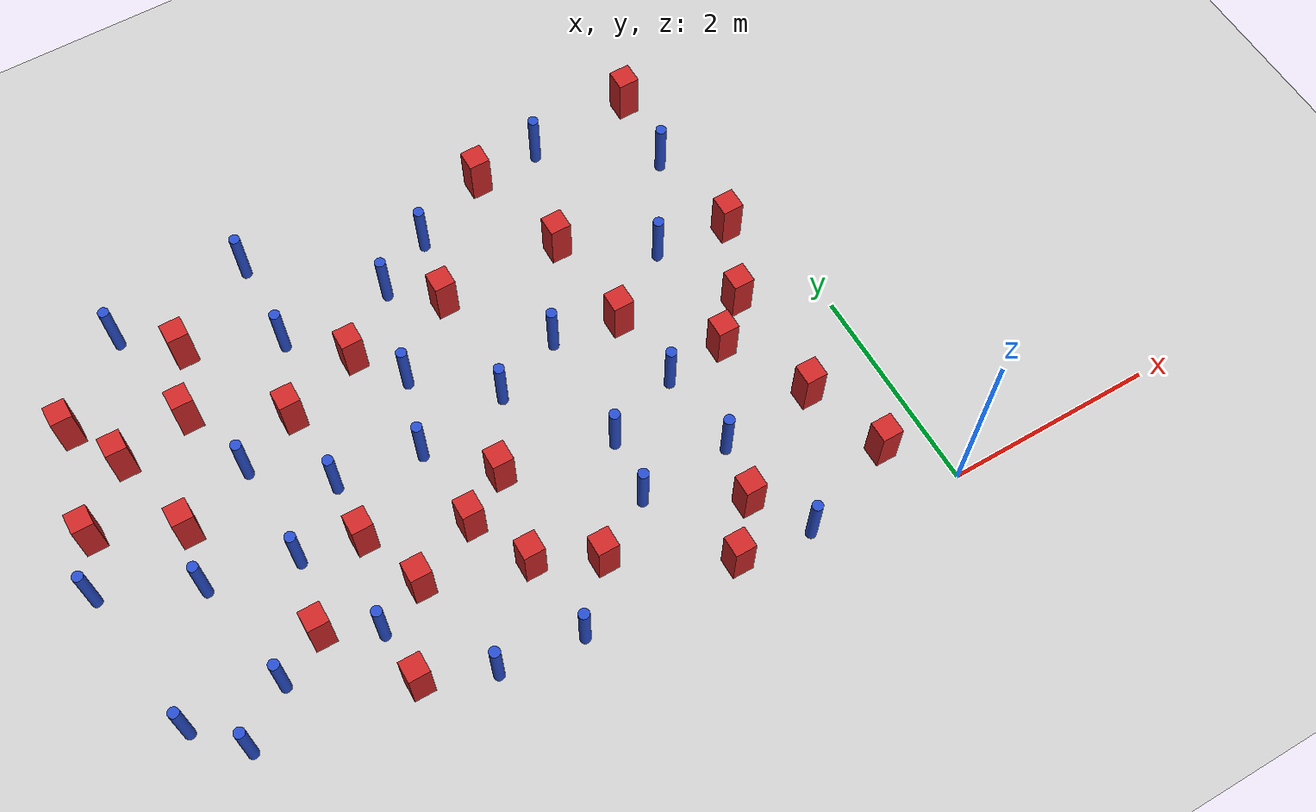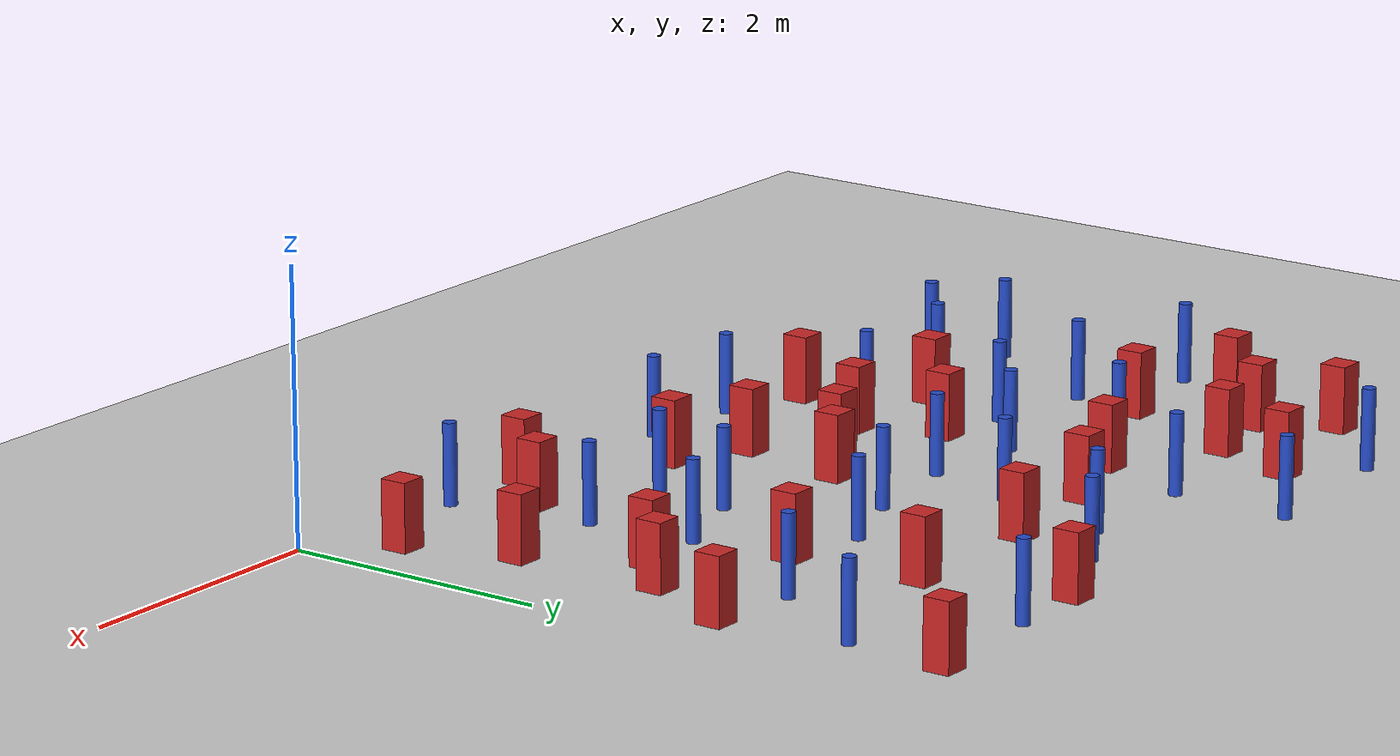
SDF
<sdf version="1.6">
 <world name="default">
  <model name="ground_plane">
   <static>1</static>
   <link name="link">
    <collision name="collision">
     <geometry><plane><normal>0 0 1</normal><size>100 100</size></plane></geometry>
     <surface><friction><ode><mu>100</mu><mu2>50</mu2></ode></friction></surface>
    </collision>
    <visual name="visual">
     <cast_shadows>0</cast_shadows>
     <geometry><plane><normal>0 0 1</normal><size>100 100</size></plane></geometry>
     <material>
      <ambient>1.0 1.0 1.0 1.0</ambient>
      <diffuse>0.8 0.8 0.8 1.0</diffuse>
      <specular>0.01 0.01 0.01 1.000000</specular>
     </material>
    </visual>
   </link>
  </model>
  <model name="square_post_obstacle0">
   <static>true</static>
   <pose>-6.26751508779 3.72826211818 1.91545236811e-07 -7.35059704564e-06 1.12565212e-07 2.39332434364e-05</pose>
   <link name="link">
    <pose>0 0 0.25 0 -0 0</pose>
    <inertial>
     <mass>100</mass>
     <inertia>
      <ixx>0.166667</ixx>
      <ixy>0</ixy>
      <ixz>0</ixz>
      <iyy>0.166667</iyy>
      <iyz>0</iyz>
      <izz>0.166667</izz>
     </inertia>
    </inertial>
    <collision name="collision"><geometry><box><size>.2 .2 .5</size></box></geometry></collision>
    <visual name="visual">
     <geometry><box><size>.2 .2 .5</size></box></geometry>
     <material>
      <script><name>Gazebo/Red</name><uri>file://media/materials/scripts/gazebo.material</uri></script>
     </material>
    </visual>
   </link>
  </model>
  <model name="square_post_obstacle11">
   <static>true</static>
   <pose>-3.46584824441 1.98512690318 1.91545236811e-07 -7.35059704564e-06 1.12565212e-07 2.39332434364e-05</pose>
   <link name="link">
    <pose>0 0 0.25 0 -0 0</pose>
    <inertial>
     <mass>100</mass>
     <inertia>
      <ixx>0.166667</ixx>
      <ixy>0</ixy>
      <ixz>0</ixz>
      <iyy>0.166667</iyy>
      <iyz>0</iyz>
      <izz>0.166667</izz>
     </inertia>
    </inertial>
    <collision name="collision"><geometry><box><size>.2 .2 .5</size></box></geometry></collision>
    <visual name="visual">
     <geometry><box><size>.2 .2 .5</size></box></geometry>
     <material>
      <script><name>Gazebo/Red</name><uri>file://media/materials/scripts/gazebo.material</uri></script>
     </material>
    </visual>
   </link>
  </model>
  <model name="square_post_obstacle13">
   <static>true</static>
   <pose>-4.93012539754 0.668586995232 1.91545236811e-07 -7.35059704564e-06 1.12565212e-07 2.39332434364e-05</pose>
   <link name="link">
    <pose>0 0 0.25 0 -0 0</pose>
    <inertial>
     <mass>100</mass>
     <inertia>
      <ixx>0.166667</ixx>
      <ixy>0</ixy>
      <ixz>0</ixz>
      <iyy>0.166667</iyy>
      <iyz>0</iyz>
      <izz>0.166667</izz>
     </inertia>
    </inertial>
    <collision name="collision"><geometry><box><size>.2 .2 .5</size></box></geometry></collision>
    <visual name="visual">
     <geometry><box><size>.2 .2 .5</size></box></geometry>
     <material>
      <script><name>Gazebo/Red</name><uri>file://media/materials/scripts/gazebo.material</uri></script>
     </material>
    </visual>
   </link>
  </model>
  <model name="pole_obstacle10">
   <static>true</static>
   <pose>-5.36167186587 3.1312678507 7.38925637345e-09 -8.47170692798e-08 1.24976764937e-08 -1.74513093023e-07</pose>
   <link name="link">
    <pose>0 0 0.3 0 -0 0</pose>
    <inertial>
     <mass>1</mass>
     <inertia><ixx>0.145833</ixx><ixy>0</ixy><ixz>0</ixz><iyy>0.145833</iyy><iyz>0</iyz><izz>0.125</izz></inertia>
    </inertial>
    <collision name="collision">
     <geometry><cylinder><radius>0.05</radius><length>.6</length></cylinder></geometry>
    </collision>
    <visual name="visual">
     <geometry><cylinder><radius>0.05</radius><length>.6</length></cylinder></geometry>
     <material>
      <script><name>Gazebo/Blue</name><uri>file://media/materials/scripts/gazebo.material</uri></script>
     </material>
    </visual>
   </link>
  </model>
  <model name="pole_obstacle13">
   <static>true</static>
   <pose>-0.584820534755 4.12830127704 7.38925637345e-09 -8.471706928e-08 1.24976765086e-08 -1.74513093015e-07</pose>
   <link name="link">
    <pose>0 0 0.3 0 -0 0</pose>
    <inertial>
     <mass>1</mass>
     <inertia><ixx>0.145833</ixx><ixy>0</ixy><ixz>0</ixz><iyy>0.145833</iyy><iyz>0</iyz><izz>0.125</izz></inertia>
    </inertial>
    <collision name="collision">
     <geometry><cylinder><radius>0.05</radius><length>.6</length></cylinder></geometry>
    </collision>
    <visual name="visual">
     <geometry><cylinder><radius>0.05</radius><length>.6</length></cylinder></geometry>
     <material>
      <script><name>Gazebo/Blue</name><uri>file://media/materials/scripts/gazebo.material</uri></script>
     </material>
    </visual>
   </link>
  </model>
  <model name="square_post_obstacle25">
   <static>true</static>
   <pose>-1.90355383326 3.78758159417 1.91545236811e-07 -7.35059704564e-06 1.12565212e-07 2.39332434364e-05</pose>
   <link name="link">
    <pose>0 0 0.25 0 -0 0</pose>
    <inertial>
     <mass>100</mass>
     <inertia>
      <ixx>0.166667</ixx>
      <ixy>0</ixy>
      <ixz>0</ixz>
      <iyy>0.166667</iyy>
      <iyz>0</iyz>
      <izz>0.166667</izz>
     </inertia>
    </inertial>
    <collision name="collision"><geometry><box><size>.2 .2 .5</size></box></geometry></collision>
    <visual name="visual">
     <geometry><box><size>.2 .2 .5</size></box></geometry>
     <material>
      <script><name>Gazebo/Red</name><uri>file://media/materials/scripts/gazebo.material</uri></script>
     </material>
    </visual>
   </link>
  </model>
  <model name="square_post_obstacle26">
   <static>true</static>
   <pose>-1.80765000594 2.80278748641 1.91545236811e-07 -7.35059704564e-06 1.12565212e-07 2.39332434364e-05</pose>
   <link name="link">
    <pose>0 0 0.25 0 -0 0</pose>
    <inertial>
     <mass>100</mass>
     <inertia>
      <ixx>0.166667</ixx>
      <ixy>0</ixy>
      <ixz>0</ixz>
      <iyy>0.166667</iyy>
      <iyz>0</iyz>
      <izz>0.166667</izz>
     </inertia>
    </inertial>
    <collision name="collision"><geometry><box><size>.2 .2 .5</size></box></geometry></collision>
    <visual name="visual">
     <geometry><box><size>.2 .2 .5</size></box></geometry>
     <material>
      <script><name>Gazebo/Red</name><uri>file://media/materials/scripts/gazebo.material</uri></script>
     </material>
    </visual>
   </link>
  </model>
  <model name="square_post_obstacle27">
   <static>true</static>
   <pose>-5.6024415163 3.86342693756 1.91545236811e-07 -7.35059704564e-06 1.12565212e-07 2.39332434364e-05</pose>
   <link name="link">
    <pose>0 0 0.25 0 -0 0</pose>
    <inertial>
     <mass>100</mass>
     <inertia>
      <ixx>0.166667</ixx>
      <ixy>0</ixy>
      <ixz>0</ixz>
      <iyy>0.166667</iyy>
      <iyz>0</iyz>
      <izz>0.166667</izz>
     </inertia>
    </inertial>
    <collision name="collision"><geometry><box><size>.2 .2 .5</size></box></geometry></collision>
    <visual name="visual">
     <geometry><box><size>.2 .2 .5</size></box></geometry>
     <material>
      <script><name>Gazebo/Red</name><uri>file://media/materials/scripts/gazebo.material</uri></script>
     </material>
    </visual>
   </link>
  </model>
  <model name="pole_obstacle22">
   <static>true</static>
   <pose>-4.53107333322 5.02013985977 7.38925637345e-09 -8.47170692796e-08 1.24976764786e-08 -1.74513093032e-07</pose>
   <link name="link">
    <pose>0 0 0.3 0 -0 0</pose>
    <inertial>
     <mass>1</mass>
     <inertia><ixx>0.145833</ixx><ixy>0</ixy><ixz>0</ixz><iyy>0.145833</iyy><iyz>0</iyz><izz>0.125</izz></inertia>
    </inertial>
    <collision name="collision">
     <geometry><cylinder><radius>0.05</radius><length>.6</length></cylinder></geometry>
    </collision>
    <visual name="visual">
     <geometry><cylinder><radius>0.05</radius><length>.6</length></cylinder></geometry>
     <material>
      <script><name>Gazebo/Blue</name><uri>file://media/materials/scripts/gazebo.material</uri></script>
     </material>
    </visual>
   </link>
  </model>
  <model name="pole_obstacle31">
   <static>true</static>
   <pose>-2.44170621021 1.77530506528 7.38925637345e-09 -8.471706928e-08 1.24976765152e-08 -1.74513093012e-07</pose>
   <link name="link">
    <pose>0 0 0.3 0 -0 0</pose>
    <inertial>
     <mass>1</mass>
     <inertia><ixx>0.145833</ixx><ixy>0</ixy><ixz>0</ixz><iyy>0.145833</iyy><iyz>0</iyz><izz>0.125</izz></inertia>
    </inertial>
    <collision name="collision">
     <geometry><cylinder><radius>0.05</radius><length>.6</length></cylinder></geometry>
    </collision>
    <visual name="visual">
     <geometry><cylinder><radius>0.05</radius><length>.6</length></cylinder></geometry>
     <material>
      <script><name>Gazebo/Blue</name><uri>file://media/materials/scripts/gazebo.material</uri></script>
     </material>
    </visual>
   </link>
  </model>
  <model name="pole_obstacle40">
   <static>true</static>
   <pose>-1.71395417419 2.05187552667 7.38925637345e-09 -8.47170692799e-08 1.24976765053e-08 -1.74513093017e-07</pose>
   <link name="link">
    <pose>0 0 0.3 0 -0 0</pose>
    <inertial>
     <mass>1</mass>
     <inertia><ixx>0.145833</ixx><ixy>0</ixy><ixz>0</ixz><iyy>0.145833</iyy><iyz>0</iyz><izz>0.125</izz></inertia>
    </inertial>
    <collision name="collision">
     <geometry><cylinder><radius>0.05</radius><length>.6</length></cylinder></geometry>
    </collision>
    <visual name="visual">
     <geometry><cylinder><radius>0.05</radius><length>.6</length></cylinder></geometry>
     <material>
      <script><name>Gazebo/Blue</name><uri>file://media/materials/scripts/gazebo.material</uri></script>
     </material>
    </visual>
   </link>
  </model>
  <model name="square_post_obstacle41">
   <static>true</static>
   <pose>-4.07237400024 3.67004723282 1.91545236811e-07 -7.35059704564e-06 1.12565212e-07 2.39332434364e-05</pose>
   <link name="link">
    <pose>0 0 0.25 0 -0 0</pose>
    <inertial>
     <mass>100</mass>
     <inertia>
      <ixx>0.166667</ixx>
      <ixy>0</ixy>
      <ixz>0</ixz>
      <iyy>0.166667</iyy>
      <iyz>0</iyz>
      <izz>0.166667</izz>
     </inertia>
    </inertial>
    <collision name="collision"><geometry><box><size>.2 .2 .5</size></box></geometry></collision>
    <visual name="visual">
     <geometry><box><size>.2 .2 .5</size></box></geometry>
     <material>
      <script><name>Gazebo/Red</name><uri>file://media/materials/scripts/gazebo.material</uri></script>
     </material>
    </visual>
   </link>
  </model>
  <model name="square_post_obstacle45">
   <static>true</static>
   <pose>-3.09388307639 3.78134132226 1.91545236811e-07 -7.35059704564e-06 1.12565212e-07 2.39332434364e-05</pose>
   <link name="link">
    <pose>0 0 0.25 0 -0 0</pose>
    <inertial>
     <mass>100</mass>
     <inertia>
      <ixx>0.166667</ixx>
      <ixy>0</ixy>
      <ixz>0</ixz>
      <iyy>0.166667</iyy>
      <iyz>0</iyz>
      <izz>0.166667</izz>
     </inertia>
    </inertial>
    <collision name="collision"><geometry><box><size>.2 .2 .5</size></box></geometry></collision>
    <visual name="visual">
     <geometry><box><size>.2 .2 .5</size></box></geometry>
     <material>
      <script><name>Gazebo/Red</name><uri>file://media/materials/scripts/gazebo.material</uri></script>
     </material>
    </visual>
   </link>
  </model>
  <model name="pole_obstacle50">
   <static>true</static>
   <pose>-5.31853069491 2.13925772895 7.38925637345e-09 -8.47170692798e-08 1.24976764937e-08 -1.74513093023e-07</pose>
   <link name="link">
    <pose>0 0 0.3 0 -0 0</pose>
    <inertial>
     <mass>1</mass>
     <inertia><ixx>0.145833</ixx><ixy>0</ixy><ixz>0</ixz><iyy>0.145833</iyy><iyz>0</iyz><izz>0.125</izz></inertia>
    </inertial>
    <collision name="collision">
     <geometry><cylinder><radius>0.05</radius><length>.6</length></cylinder></geometry>
    </collision>
    <visual name="visual">
     <geometry><cylinder><radius>0.05</radius><length>.6</length></cylinder></geometry>
     <material>
      <script><name>Gazebo/Blue</name><uri>file://media/materials/scripts/gazebo.material</uri></script>
     </material>
    </visual>
   </link>
  </model>
  <model name="square_post_obstacle56">
   <static>true</static>
   <pose>-6.56269119229 4.24138942581 1.91545236811e-07 -7.35059704564e-06 1.12565212e-07 2.39332434364e-05</pose>
   <link name="link">
    <pose>0 0 0.25 0 -0 0</pose>
    <inertial>
     <mass>100</mass>
     <inertia>
      <ixx>0.166667</ixx>
      <ixy>0</ixy>
      <ixz>0</ixz>
      <iyy>0.166667</iyy>
      <iyz>0</iyz>
      <izz>0.166667</izz>
     </inertia>
    </inertial>
    <collision name="collision"><geometry><box><size>.2 .2 .5</size></box></geometry></collision>
    <visual name="visual">
     <geometry><box><size>.2 .2 .5</size></box></geometry>
     <material>
      <script><name>Gazebo/Red</name><uri>file://media/materials/scripts/gazebo.material</uri></script>
     </material>
    </visual>
   </link>
  </model>
  <model name="square_post_obstacle61">
   <static>true</static>
   <pose>-0.718454725162 1.32841768803 1.91545236811e-07 -7.35059704564e-06 1.12565212e-07 2.39332434364e-05</pose>
   <link name="link">
    <pose>0 0 0.25 0 -0 0</pose>
    <inertial>
     <mass>100</mass>
     <inertia>
      <ixx>0.166667</ixx>
      <ixy>0</ixy>
      <ixz>0</ixz>
      <iyy>0.166667</iyy>
      <iyz>0</iyz>
      <izz>0.166667</izz>
     </inertia>
    </inertial>
    <collision name="collision"><geometry><box><size>.2 .2 .5</size></box></geometry></collision>
    <visual name="visual">
     <geometry><box><size>.2 .2 .5</size></box></geometry>
     <material>
      <script><name>Gazebo/Red</name><uri>file://media/materials/scripts/gazebo.material</uri></script>
     </material>
    </visual>
   </link>
  </model>
  <model name="square_post_obstacle68">
   <static>true</static>
   <pose>-0.760852131063 2.45943947834 1.91545236811e-07 -7.35059704564e-06 1.12565212e-07 2.39332434364e-05</pose>
   <link name="link">
    <pose>0 0 0.25 0 -0 0</pose>
    <inertial>
     <mass>100</mass>
     <inertia>
      <ixx>0.166667</ixx>
      <ixy>0</ixy>
      <ixz>0</ixz>
      <iyy>0.166667</iyy>
      <iyz>0</iyz>
      <izz>0.166667</izz>
     </inertia>
    </inertial>
    <collision name="collision"><geometry><box><size>.2 .2 .5</size></box></geometry></collision>
    <visual name="visual">
     <geometry><box><size>.2 .2 .5</size></box></geometry>
     <material>
      <script><name>Gazebo/Red</name><uri>file://media/materials/scripts/gazebo.material</uri></script>
     </material>
    </visual>
   </link>
  </model>
  <model name="pole_obstacle76">
   <static>true</static>
   <pose>-6.73254689458 1.24661607163 7.38925637345e-09 -8.471706928e-08 1.24976765134e-08 -1.74513093015e-07</pose>
   <link name="link">
    <pose>0 0 0.3 0 -0 0</pose>
    <inertial>
     <mass>1</mass>
     <inertia><ixx>0.145833</ixx><ixy>0</ixy><ixz>0</ixz><iyy>0.145833</iyy><iyz>0</iyz><izz>0.125</izz></inertia>
    </inertial>
    <collision name="collision">
     <geometry><cylinder><radius>0.05</radius><length>.6</length></cylinder></geometry>
    </collision>
    <visual name="visual">
     <geometry><cylinder><radius>0.05</radius><length>.6</length></cylinder></geometry>
     <material>
      <script><name>Gazebo/Blue</name><uri>file://media/materials/scripts/gazebo.material</uri></script>
     </material>
    </visual>
   </link>
  </model>
  <model name="pole_obstacle80">
   <static>true</static>
   <pose>-1.12456285723 3.26364188311 7.38925637345e-09 -8.47170692799e-08 1.24976765053e-08 -1.74513093017e-07</pose>
   <link name="link">
    <pose>0 0 0.3 0 -0 0</pose>
    <inertial>
     <mass>1</mass>
     <inertia><ixx>0.145833</ixx><ixy>0</ixy><ixz>0</ixz><iyy>0.145833</iyy><iyz>0</iyz><izz>0.125</izz></inertia>
    </inertial>
    <collision name="collision">
     <geometry><cylinder><radius>0.05</radius><length>.6</length></cylinder></geometry>
    </collision>
    <visual name="visual">
     <geometry><cylinder><radius>0.05</radius><length>.6</length></cylinder></geometry>
     <material>
      <script><name>Gazebo/Blue</name><uri>file://media/materials/scripts/gazebo.material</uri></script>
     </material>
    </visual>
   </link>
  </model>
  <model name="pole_obstacle90">
   <static>true</static>
   <pose>-1.40539435352 0.194600641974 7.38925637345e-09 -8.47170692799e-08 1.24976765003e-08 -1.7451309302e-07</pose>
   <link name="link">
    <pose>0 0 0.3 0 -0 0</pose>
    <inertial>
     <mass>1</mass>
     <inertia><ixx>0.145833</ixx><ixy>0</ixy><ixz>0</ixz><iyy>0.145833</iyy><iyz>0</iyz><izz>0.125</izz></inertia>
    </inertial>
    <collision name="collision">
     <geometry><cylinder><radius>0.05</radius><length>.6</length></cylinder></geometry>
    </collision>
    <visual name="visual">
     <geometry><cylinder><radius>0.05</radius><length>.6</length></cylinder></geometry>
     <material>
      <script><name>Gazebo/Blue</name><uri>file://media/materials/scripts/gazebo.material</uri></script>
     </material>
    </visual>
   </link>
  </model>
  <model name="square_post_obstacle86">
   <static>true</static>
   <pose>-4.76609665487 2.03961601395 1.91545236811e-07 -7.35059704564e-06 1.12565212e-07 2.39332434364e-05</pose>
   <link name="link">
    <pose>0 0 0.25 0 -0 0</pose>
    <inertial>
     <mass>100</mass>
     <inertia>
      <ixx>0.166667</ixx>
      <ixy>0</ixy>
      <ixz>0</ixz>
      <iyy>0.166667</iyy>
      <iyz>0</iyz>
      <izz>0.166667</izz>
     </inertia>
    </inertial>
    <collision name="collision"><geometry><box><size>.2 .2 .5</size></box></geometry></collision>
    <visual name="visual">
     <geometry><box><size>.2 .2 .5</size></box></geometry>
     <material>
      <script><name>Gazebo/Red</name><uri>file://media/materials/scripts/gazebo.material</uri></script>
     </material>
    </visual>
   </link>
  </model>
  <model name="pole_obstacle99">
   <static>true</static>
   <pose>-3.55109913614 0.34456630186 7.38925637345e-09 -8.471706928e-08 1.24976765172e-08 -1.74513093013e-07</pose>
   <link name="link">
    <pose>0 0 0.3 0 -0 0</pose>
    <inertial>
     <mass>1</mass>
     <inertia><ixx>0.145833</ixx><ixy>0</ixy><ixz>0</ixz><iyy>0.145833</iyy><iyz>0</iyz><izz>0.125</izz></inertia>
    </inertial>
    <collision name="collision">
     <geometry><cylinder><radius>0.05</radius><length>.6</length></cylinder></geometry>
    </collision>
    <visual name="visual">
     <geometry><cylinder><radius>0.05</radius><length>.6</length></cylinder></geometry>
     <material>
      <script><name>Gazebo/Blue</name><uri>file://media/materials/scripts/gazebo.material</uri></script>
     </material>
    </visual>
   </link>
  </model>
  <model name="pole_obstacle102">
   <static>true</static>
   <pose>-6.35195689966 0.841429002527 7.38925637345e-09 -8.47170692799e-08 1.24976765038e-08 -1.74513093018e-07</pose>
   <link name="link">
    <pose>0 0 0.3 0 -0 0</pose>
    <inertial>
     <mass>1</mass>
     <inertia><ixx>0.145833</ixx><ixy>0</ixy><ixz>0</ixz><iyy>0.145833</iyy><iyz>0</iyz><izz>0.125</izz></inertia>
    </inertial>
    <collision name="collision">
     <geometry><cylinder><radius>0.05</radius><length>.6</length></cylinder></geometry>
    </collision>
    <visual name="visual">
     <geometry><cylinder><radius>0.05</radius><length>.6</length></cylinder></geometry>
     <material>
      <script><name>Gazebo/Blue</name><uri>file://media/materials/scripts/gazebo.material</uri></script>
     </material>
    </visual>
   </link>
  </model>
  <model name="pole_obstacle106">
   <static>true</static>
   <pose>-2.50994527466 1.17356923849 7.38925637345e-09 -8.471706928e-08 1.24976765152e-08 -1.74513093012e-07</pose>
   <link name="link">
    <pose>0 0 0.3 0 -0 0</pose>
    <inertial>
     <mass>1</mass>
     <inertia><ixx>0.145833</ixx><ixy>0</ixy><ixz>0</ixz><iyy>0.145833</iyy><iyz>0</iyz><izz>0.125</izz></inertia>
    </inertial>
    <collision name="collision">
     <geometry><cylinder><radius>0.05</radius><length>.6</length></cylinder></geometry>
    </collision>
    <visual name="visual">
     <geometry><cylinder><radius>0.05</radius><length>.6</length></cylinder></geometry>
     <material>
      <script><name>Gazebo/Blue</name><uri>file://media/materials/scripts/gazebo.material</uri></script>
     </material>
    </visual>
   </link>
  </model>
  <model name="pole_obstacle117">
   <static>true</static>
   <pose>-1.62160480567 1.23973842471 7.38925637345e-09 -8.471706928e-08 1.24976765079e-08 -1.74513093017e-07</pose>
   <link name="link">
    <pose>0 0 0.3 0 -0 0</pose>
    <inertial>
     <mass>1</mass>
     <inertia><ixx>0.145833</ixx><ixy>0</ixy><ixz>0</ixz><iyy>0.145833</iyy><iyz>0</iyz><izz>0.125</izz></inertia>
    </inertial>
    <collision name="collision">
     <geometry><cylinder><radius>0.05</radius><length>.6</length></cylinder></geometry>
    </collision>
    <visual name="visual">
     <geometry><cylinder><radius>0.05</radius><length>.6</length></cylinder></geometry>
     <material>
      <script><name>Gazebo/Blue</name><uri>file://media/materials/scripts/gazebo.material</uri></script>
     </material>
    </visual>
   </link>
  </model>
  <model name="square_post_obstacle104">
   <static>true</static>
   <pose>-4.53236744779 1.42019899009 1.91545236811e-07 -7.35059704564e-06 1.12565212e-07 2.39332434364e-05</pose>
   <link name="link">
    <pose>0 0 0.25 0 -0 0</pose>
    <inertial>
     <mass>100</mass>
     <inertia>
      <ixx>0.166667</ixx>
      <ixy>0</ixy>
      <ixz>0</ixz>
      <iyy>0.166667</iyy>
      <iyz>0</iyz>
      <izz>0.166667</izz>
     </inertia>
    </inertial>
    <collision name="collision"><geometry><box><size>.2 .2 .5</size></box></geometry></collision>
    <visual name="visual">
     <geometry><box><size>.2 .2 .5</size></box></geometry>
     <material>
      <script><name>Gazebo/Red</name><uri>file://media/materials/scripts/gazebo.material</uri></script>
     </material>
    </visual>
   </link>
  </model>
  <model name="pole_obstacle122">
   <static>true</static>
   <pose>-1.57235584041 4.81847363338 7.38925637345e-09 -8.47170692799e-08 1.24976765033e-08 -1.74513093018e-07</pose>
   <link name="link">
    <pose>0 0 0.3 0 -0 0</pose>
    <inertial>
     <mass>1</mass>
     <inertia><ixx>0.145833</ixx><ixy>0</ixy><ixz>0</ixz><iyy>0.145833</iyy><iyz>0</iyz><izz>0.125</izz></inertia>
    </inertial>
    <collision name="collision">
     <geometry><cylinder><radius>0.05</radius><length>.6</length></cylinder></geometry>
    </collision>
    <visual name="visual">
     <geometry><cylinder><radius>0.05</radius><length>.6</length></cylinder></geometry>
     <material>
      <script><name>Gazebo/Blue</name><uri>file://media/materials/scripts/gazebo.material</uri></script>
     </material>
    </visual>
   </link>
  </model>
  <model name="pole_obstacle133">
   <static>true</static>
   <pose>-3.9607911514 2.51612847083 7.38925637345e-09 -8.47170692797e-08 1.24976764812e-08 -1.74513093031e-07</pose>
   <link name="link">
    <pose>0 0 0.3 0 -0 0</pose>
    <inertial>
     <mass>1</mass>
     <inertia><ixx>0.145833</ixx><ixy>0</ixy><ixz>0</ixz><iyy>0.145833</iyy><iyz>0</iyz><izz>0.125</izz></inertia>
    </inertial>
    <collision name="collision">
     <geometry><cylinder><radius>0.05</radius><length>.6</length></cylinder></geometry>
    </collision>
    <visual name="visual">
     <geometry><cylinder><radius>0.05</radius><length>.6</length></cylinder></geometry>
     <material>
      <script><name>Gazebo/Blue</name><uri>file://media/materials/scripts/gazebo.material</uri></script>
     </material>
    </visual>
   </link>
  </model>
  <model name="square_post_obstacle116">
   <static>true</static>
   <pose>-6.03181062725 2.85420940314 1.91545236811e-07 -7.35059704564e-06 1.12565212e-07 2.39332434364e-05</pose>
   <link name="link">
    <pose>0 0 0.25 0 -0 0</pose>
    <inertial>
     <mass>100</mass>
     <inertia>
      <ixx>0.166667</ixx>
      <ixy>0</ixy>
      <ixz>0</ixz>
      <iyy>0.166667</iyy>
      <iyz>0</iyz>
      <izz>0.166667</izz>
     </inertia>
    </inertial>
    <collision name="collision"><geometry><box><size>.2 .2 .5</size></box></geometry></collision>
    <visual name="visual">
     <geometry><box><size>.2 .2 .5</size></box></geometry>
     <material>
      <script><name>Gazebo/Red</name><uri>file://media/materials/scripts/gazebo.material</uri></script>
     </material>
    </visual>
   </link>
  </model>
  <model name="square_post_obstacle118">
   <static>true</static>
   <pose>-1.13069227005 2.11742852755 1.91545236811e-07 -7.35059704564e-06 1.12565212e-07 2.39332434364e-05</pose>
   <link name="link">
    <pose>0 0 0.25 0 -0 0</pose>
    <inertial>
     <mass>100</mass>
     <inertia>
      <ixx>0.166667</ixx>
      <ixy>0</ixy>
      <ixz>0</ixz>
      <iyy>0.166667</iyy>
      <iyz>0</iyz>
      <izz>0.166667</izz>
     </inertia>
    </inertial>
    <collision name="collision"><geometry><box><size>.2 .2 .5</size></box></geometry></collision>
    <visual name="visual">
     <geometry><box><size>.2 .2 .5</size></box></geometry>
     <material>
      <script><name>Gazebo/Red</name><uri>file://media/materials/scripts/gazebo.material</uri></script>
     </material>
    </visual>
   </link>
  </model>
  <model name="pole_obstacle138">
   <static>true</static>
   <pose>-4.74799049961 2.61197424595 7.38925637345e-09 -8.47170692798e-08 1.24976764937e-08 -1.74513093023e-07</pose>
   <link name="link">
    <pose>0 0 0.3 0 -0 0</pose>
    <inertial>
     <mass>1</mass>
     <inertia><ixx>0.145833</ixx><ixy>0</ixy><ixz>0</ixz><iyy>0.145833</iyy><iyz>0</iyz><izz>0.125</izz></inertia>
    </inertial>
    <collision name="collision">
     <geometry><cylinder><radius>0.05</radius><length>.6</length></cylinder></geometry>
    </collision>
    <visual name="visual">
     <geometry><cylinder><radius>0.05</radius><length>.6</length></cylinder></geometry>
     <material>
      <script><name>Gazebo/Blue</name><uri>file://media/materials/scripts/gazebo.material</uri></script>
     </material>
    </visual>
   </link>
  </model>
  <model name="square_post_obstacle132">
   <static>true</static>
   <pose>-3.08438479073 0.850071333376 1.91545236811e-07 -7.35059704564e-06 1.12565212e-07 2.39332434364e-05</pose>
   <link name="link">
    <pose>0 0 0.25 0 -0 0</pose>
    <inertial>
     <mass>100</mass>
     <inertia>
      <ixx>0.166667</ixx>
      <ixy>0</ixy>
      <ixz>0</ixz>
      <iyy>0.166667</iyy>
      <iyz>0</iyz>
      <izz>0.166667</izz>
     </inertia>
    </inertial>
    <collision name="collision"><geometry><box><size>.2 .2 .5</size></box></geometry></collision>
    <visual name="visual">
     <geometry><box><size>.2 .2 .5</size></box></geometry>
     <material>
      <script><name>Gazebo/Red</name><uri>file://media/materials/scripts/gazebo.material</uri></script>
     </material>
    </visual>
   </link>
  </model>
  <model name="square_post_obstacle138">
   <static>true</static>
   <pose>-0.458689608882 0.538735825372 1.91545236811e-07 -7.35059704564e-06 1.12565212e-07 2.39332434364e-05</pose>
   <link name="link">
    <pose>0 0 0.25 0 -0 0</pose>
    <inertial>
     <mass>100</mass>
     <inertia>
      <ixx>0.166667</ixx>
      <ixy>0</ixy>
      <ixz>0</ixz>
      <iyy>0.166667</iyy>
      <iyz>0</iyz>
      <izz>0.166667</izz>
     </inertia>
    </inertial>
    <collision name="collision"><geometry><box><size>.2 .2 .5</size></box></geometry></collision>
    <visual name="visual">
     <geometry><box><size>.2 .2 .5</size></box></geometry>
     <material>
      <script><name>Gazebo/Red</name><uri>file://media/materials/scripts/gazebo.material</uri></script>
     </material>
    </visual>
   </link>
  </model>
  <model name="pole_obstacle151">
   <static>true</static>
   <pose>-3.75125599331 3.22466006409 7.38925637345e-09 -8.47170692798e-08 1.24976764939e-08 -1.74513093025e-07</pose>
   <link name="link">
    <pose>0 0 0.3 0 -0 0</pose>
    <inertial>
     <mass>1</mass>
     <inertia><ixx>0.145833</ixx><ixy>0</ixy><ixz>0</ixz><iyy>0.145833</iyy><iyz>0</iyz><izz>0.125</izz></inertia>
    </inertial>
    <collision name="collision">
     <geometry><cylinder><radius>0.05</radius><length>.6</length></cylinder></geometry>
    </collision>
    <visual name="visual">
     <geometry><cylinder><radius>0.05</radius><length>.6</length></cylinder></geometry>
     <material>
      <script><name>Gazebo/Blue</name><uri>file://media/materials/scripts/gazebo.material</uri></script>
     </material>
    </visual>
   </link>
  </model>
  <model name="square_post_obstacle144">
   <static>true</static>
   <pose>-3.90404201921 1.70245823979 1.91545236811e-07 -7.35059704564e-06 1.12565212e-07 2.39332434364e-05</pose>
   <link name="link">
    <pose>0 0 0.25 0 -0 0</pose>
    <inertial>
     <mass>100</mass>
     <inertia>
      <ixx>0.166667</ixx>
      <ixy>0</ixy>
      <ixz>0</ixz>
      <iyy>0.166667</iyy>
      <iyz>0</iyz>
      <izz>0.166667</izz>
     </inertia>
    </inertial>
    <collision name="collision"><geometry><box><size>.2 .2 .5</size></box></geometry></collision>
    <visual name="visual">
     <geometry><box><size>.2 .2 .5</size></box></geometry>
     <material>
      <script><name>Gazebo/Red</name><uri>file://media/materials/scripts/gazebo.material</uri></script>
     </material>
    </visual>
   </link>
  </model>
  <model name="square_post_obstacle145">
   <static>true</static>
   <pose>-3.6318515901 1.12919106698 1.91545236811e-07 -7.35059704564e-06 1.12565212e-07 2.39332434364e-05</pose>
   <link name="link">
    <pose>0 0 0.25 0 -0 0</pose>
    <inertial>
     <mass>100</mass>
     <inertia>
      <ixx>0.166667</ixx>
      <ixy>0</ixy>
      <ixz>0</ixz>
      <iyy>0.166667</iyy>
      <iyz>0</iyz>
      <izz>0.166667</izz>
     </inertia>
    </inertial>
    <collision name="collision"><geometry><box><size>.2 .2 .5</size></box></geometry></collision>
    <visual name="visual">
     <geometry><box><size>.2 .2 .5</size></box></geometry>
     <material>
      <script><name>Gazebo/Red</name><uri>file://media/materials/scripts/gazebo.material</uri></script>
     </material>
    </visual>
   </link>
  </model>
  <model name="square_post_obstacle147">
   <static>true</static>
   <pose>-5.44633265793 1.45571129157 1.91545236811e-07 -7.35059704564e-06 1.12565212e-07 2.39332434364e-05</pose>
   <link name="link">
    <pose>0 0 0.25 0 -0 0</pose>
    <inertial>
     <mass>100</mass>
     <inertia>
      <ixx>0.166667</ixx>
      <ixy>0</ixy>
      <ixz>0</ixz>
      <iyy>0.166667</iyy>
      <iyz>0</iyz>
      <izz>0.166667</izz>
     </inertia>
    </inertial>
    <collision name="collision"><geometry><box><size>.2 .2 .5</size></box></geometry></collision>
    <visual name="visual">
     <geometry><box><size>.2 .2 .5</size></box></geometry>
     <material>
      <script><name>Gazebo/Red</name><uri>file://media/materials/scripts/gazebo.material</uri></script>
     </material>
    </visual>
   </link>
  </model>
  <model name="pole_obstacle158">
   <static>true</static>
   <pose>-5.84103006939 4.90160992572 7.38925637345e-09 -8.47170692796e-08 1.24976764786e-08 -1.74513093032e-07</pose>
   <link name="link">
    <pose>0 0 0.3 0 -0 0</pose>
    <inertial>
     <mass>1</mass>
     <inertia><ixx>0.145833</ixx><ixy>0</ixy><ixz>0</ixz><iyy>0.145833</iyy><iyz>0</iyz><izz>0.125</izz></inertia>
    </inertial>
    <collision name="collision">
     <geometry><cylinder><radius>0.05</radius><length>.6</length></cylinder></geometry>
    </collision>
    <visual name="visual">
     <geometry><cylinder><radius>0.05</radius><length>.6</length></cylinder></geometry>
     <material>
      <script><name>Gazebo/Blue</name><uri>file://media/materials/scripts/gazebo.material</uri></script>
     </material>
    </visual>
   </link>
  </model>
  <model name="pole_obstacle160">
   <static>true</static>
   <pose>-4.54586161563 4.12477991543 7.38925637345e-09 -8.47170692796e-08 1.24976764786e-08 -1.74513093032e-07</pose>
   <link name="link">
    <pose>0 0 0.3 0 -0 0</pose>
    <inertial>
     <mass>1</mass>
     <inertia><ixx>0.145833</ixx><ixy>0</ixy><ixz>0</ixz><iyy>0.145833</iyy><iyz>0</iyz><izz>0.125</izz></inertia>
    </inertial>
    <collision name="collision">
     <geometry><cylinder><radius>0.05</radius><length>.6</length></cylinder></geometry>
    </collision>
    <visual name="visual">
     <geometry><cylinder><radius>0.05</radius><length>.6</length></cylinder></geometry>
     <material>
      <script><name>Gazebo/Blue</name><uri>file://media/materials/scripts/gazebo.material</uri></script>
     </material>
    </visual>
   </link>
  </model>
  <model name="square_post_obstacle154">
   <static>true</static>
   <pose>-2.20818507134 4.7955242394 1.91545236811e-07 -7.35059704564e-06 1.12565212e-07 2.39332434364e-05</pose>
   <link name="link">
    <pose>0 0 0.25 0 -0 0</pose>
    <inertial>
     <mass>100</mass>
     <inertia>
      <ixx>0.166667</ixx>
      <ixy>0</ixy>
      <ixz>0</ixz>
      <iyy>0.166667</iyy>
      <iyz>0</iyz>
      <izz>0.166667</izz>
     </inertia>
    </inertial>
    <collision name="collision"><geometry><box><size>.2 .2 .5</size></box></geometry></collision>
    <visual name="visual">
     <geometry><box><size>.2 .2 .5</size></box></geometry>
     <material>
      <script><name>Gazebo/Red</name><uri>file://media/materials/scripts/gazebo.material</uri></script>
     </material>
    </visual>
   </link>
  </model>
  <model name="pole_obstacle163">
   <static>true</static>
   <pose>-3.50225222375 4.14334456235 7.38925637345e-09 -8.47170692798e-08 1.24976765033e-08 -1.74513093019e-07</pose>
   <link name="link">
    <pose>0 0 0.3 0 -0 0</pose>
    <inertial>
     <mass>1</mass>
     <inertia><ixx>0.145833</ixx><ixy>0</ixy><ixz>0</ixz><iyy>0.145833</iyy><iyz>0</iyz><izz>0.125</izz></inertia>
    </inertial>
    <collision name="collision">
     <geometry><cylinder><radius>0.05</radius><length>.6</length></cylinder></geometry>
    </collision>
    <visual name="visual">
     <geometry><cylinder><radius>0.05</radius><length>.6</length></cylinder></geometry>
     <material>
      <script><name>Gazebo/Blue</name><uri>file://media/materials/scripts/gazebo.material</uri></script>
     </material>
    </visual>
   </link>
  </model>
  <model name="square_post_obstacle159">
   <static>true</static>
   <pose>-6.7762520307 3.21282207399 1.91545236811e-07 -7.35059704564e-06 1.12565212e-07 2.39332434364e-05</pose>
   <link name="link">
    <pose>0 0 0.25 0 -0 0</pose>
    <inertial>
     <mass>100</mass>
     <inertia>
      <ixx>0.166667</ixx>
      <ixy>0</ixy>
      <ixz>0</ixz>
      <iyy>0.166667</iyy>
      <iyz>0</iyz>
      <izz>0.166667</izz>
     </inertia>
    </inertial>
    <collision name="collision"><geometry><box><size>.2 .2 .5</size></box></geometry></collision>
    <visual name="visual">
     <geometry><box><size>.2 .2 .5</size></box></geometry>
     <material>
      <script><name>Gazebo/Red</name><uri>file://media/materials/scripts/gazebo.material</uri></script>
     </material>
    </visual>
   </link>
  </model>
  <model name="pole_obstacle172">
   <static>true</static>
   <pose>-3.09007668689 2.66030524847 7.38925637345e-09 -8.47170692798e-08 1.24976764939e-08 -1.74513093025e-07</pose>
   <link name="link">
    <pose>0 0 0.3 0 -0 0</pose>
    <inertial>
     <mass>1</mass>
     <inertia><ixx>0.145833</ixx><ixy>0</ixy><ixz>0</ixz><iyy>0.145833</iyy><iyz>0</iyz><izz>0.125</izz></inertia>
    </inertial>
    <collision name="collision">
     <geometry><cylinder><radius>0.05</radius><length>.6</length></cylinder></geometry>
    </collision>
    <visual name="visual">
     <geometry><cylinder><radius>0.05</radius><length>.6</length></cylinder></geometry>
     <material>
      <script><name>Gazebo/Blue</name><uri>file://media/materials/scripts/gazebo.material</uri></script>
     </material>
    </visual>
   </link>
  </model>
  <model name="pole_obstacle181">
   <static>true</static>
   <pose>-6.11627514967 2.29825125873 7.38925637345e-09 -8.47170692798e-08 1.24976764937e-08 -1.74513093023e-07</pose>
   <link name="link">
    <pose>0 0 0.3 0 -0 0</pose>
    <inertial>
     <mass>1</mass>
     <inertia><ixx>0.145833</ixx><ixy>0</ixy><ixz>0</ixz><iyy>0.145833</iyy><iyz>0</iyz><izz>0.125</izz></inertia>
    </inertial>
    <collision name="collision">
     <geometry><cylinder><radius>0.05</radius><length>.6</length></cylinder></geometry>
    </collision>
    <visual name="visual">
     <geometry><cylinder><radius>0.05</radius><length>.6</length></cylinder></geometry>
     <material>
      <script><name>Gazebo/Blue</name><uri>file://media/materials/scripts/gazebo.material</uri></script>
     </material>
    </visual>
   </link>
  </model>
  <model name="pole_obstacle183">
   <static>true</static>
   <pose>-4.32458472073 0.423088628732 7.38925637345e-09 -8.47170692798e-08 1.24976765003e-08 -1.7451309302e-07</pose>
   <link name="link">
    <pose>0 0 0.3 0 -0 0</pose>
    <inertial>
     <mass>1</mass>
     <inertia><ixx>0.145833</ixx><ixy>0</ixy><ixz>0</ixz><iyy>0.145833</iyy><iyz>0</iyz><izz>0.125</izz></inertia>
    </inertial>
    <collision name="collision">
     <geometry><cylinder><radius>0.05</radius><length>.6</length></cylinder></geometry>
    </collision>
    <visual name="visual">
     <geometry><cylinder><radius>0.05</radius><length>.6</length></cylinder></geometry>
     <material>
      <script><name>Gazebo/Blue</name><uri>file://media/materials/scripts/gazebo.material</uri></script>
     </material>
    </visual>
   </link>
  </model>
  <model name="square_post_obstacle174">
   <static>true</static>
   <pose>-0.534682648421 4.90583235727 1.91545236811e-07 -7.35059704564e-06 1.12565212e-07 2.39332434364e-05</pose>
   <link name="link">
    <pose>0 0 0.25 0 -0 0</pose>
    <inertial>
     <mass>100</mass>
     <inertia>
      <ixx>0.166667</ixx>
      <ixy>0</ixy>
      <ixz>0</ixz>
      <iyy>0.166667</iyy>
      <iyz>0</iyz>
      <izz>0.166667</izz>
     </inertia>
    </inertial>
    <collision name="collision"><geometry><box><size>.2 .2 .5</size></box></geometry></collision>
    <visual name="visual">
     <geometry><box><size>.2 .2 .5</size></box></geometry>
     <material>
      <script><name>Gazebo/Red</name><uri>file://media/materials/scripts/gazebo.material</uri></script>
     </material>
    </visual>
   </link>
  </model>
  <model name="square_post_obstacle182">
   <static>true</static>
   <pose>-5.37368230419 4.49138306854 1.91545236811e-07 -7.35059704564e-06 1.12565212e-07 2.39332434364e-05</pose>
   <link name="link">
    <pose>0 0 0.25 0 -0 0</pose>
    <inertial>
     <mass>100</mass>
     <inertia>
      <ixx>0.166667</ixx>
      <ixy>0</ixy>
      <ixz>0</ixz>
      <iyy>0.166667</iyy>
      <iyz>0</iyz>
      <izz>0.166667</izz>
     </inertia>
    </inertial>
    <collision name="collision"><geometry><box><size>.2 .2 .5</size></box></geometry></collision>
    <visual name="visual">
     <geometry><box><size>.2 .2 .5</size></box></geometry>
     <material>
      <script><name>Gazebo/Red</name><uri>file://media/materials/scripts/gazebo.material</uri></script>
     </material>
    </visual>
   </link>
  </model>
  <model name="square_post_obstacle187">
   <static>true</static>
   <pose>-1.7339725474 0.699323476227 1.91545236811e-07 -7.35059704564e-06 1.12565212e-07 2.39332434364e-05</pose>
   <link name="link">
    <pose>0 0 0.25 0 -0 0</pose>
    <inertial>
     <mass>100</mass>
     <inertia>
      <ixx>0.166667</ixx>
      <ixy>0</ixy>
      <ixz>0</ixz>
      <iyy>0.166667</iyy>
      <iyz>0</iyz>
      <izz>0.166667</izz>
     </inertia>
    </inertial>
    <collision name="collision"><geometry><box><size>.2 .2 .5</size></box></geometry></collision>
    <visual name="visual">
     <geometry><box><size>.2 .2 .5</size></box></geometry>
     <material>
      <script><name>Gazebo/Red</name><uri>file://media/materials/scripts/gazebo.material</uri></script>
     </material>
    </visual>
   </link>
  </model>
  <model name="square_post_obstacle192">
   <static>true</static>
   <pose>-4.79784711283 3.3987453536 1.91545236811e-07 -7.35059704564e-06 1.12565212e-07 2.39332434364e-05</pose>
   <link name="link">
    <pose>0 0 0.25 0 -0 0</pose>
    <inertial>
     <mass>100</mass>
     <inertia>
      <ixx>0.166667</ixx>
      <ixy>0</ixy>
      <ixz>0</ixz>
      <iyy>0.166667</iyy>
      <iyz>0</iyz>
      <izz>0.166667</izz>
     </inertia>
    </inertial>
    <collision name="collision"><geometry><box><size>.2 .2 .5</size></box></geometry></collision>
    <visual name="visual">
     <geometry><box><size>.2 .2 .5</size></box></geometry>
     <material>
      <script><name>Gazebo/Red</name><uri>file://media/materials/scripts/gazebo.material</uri></script>
     </material>
    </visual>
   </link>
  </model>
  <model name="pole_obstacle201">
   <static>true</static>
   <pose>-2.4274769497 2.91694867964 7.38925637345e-09 -8.47170692798e-08 1.24976764939e-08 -1.74513093025e-07</pose>
   <link name="link">
    <pose>0 0 0.3 0 -0 0</pose>
    <inertial>
     <mass>1</mass>
     <inertia><ixx>0.145833</ixx><ixy>0</ixy><ixz>0</ixz><iyy>0.145833</iyy><iyz>0</iyz><izz>0.125</izz></inertia>
    </inertial>
    <collision name="collision">
     <geometry><cylinder><radius>0.05</radius><length>.6</length></cylinder></geometry>
    </collision>
    <visual name="visual">
     <geometry><cylinder><radius>0.05</radius><length>.6</length></cylinder></geometry>
     <material>
      <script><name>Gazebo/Blue</name><uri>file://media/materials/scripts/gazebo.material</uri></script>
     </material>
    </visual>
   </link>
  </model>
  <model name="pole_obstacle202">
   <static>true</static>
   <pose>-2.96136306874 4.45009525376 7.38925637345e-09 -8.47170692798e-08 1.24976765033e-08 -1.74513093019e-07</pose>
   <link name="link">
    <pose>0 0 0.3 0 -0 0</pose>
    <inertial>
     <mass>1</mass>
     <inertia><ixx>0.145833</ixx><ixy>0</ixy><ixz>0</ixz><iyy>0.145833</iyy><iyz>0</iyz><izz>0.125</izz></inertia>
    </inertial>
    <collision name="collision">
     <geometry><cylinder><radius>0.05</radius><length>.6</length></cylinder></geometry>
    </collision>
    <visual name="visual">
     <geometry><cylinder><radius>0.05</radius><length>.6</length></cylinder></geometry>
     <material>
      <script><name>Gazebo/Blue</name><uri>file://media/materials/scripts/gazebo.material</uri></script>
     </material>
    </visual>
   </link>
  </model>
  <model name="pole_obstacle207">
   <static>true</static>
   <pose>-6.95882511793 2.68864603159 7.38925637345e-09 -8.47170692798e-08 1.24976764937e-08 -1.74513093023e-07</pose>
   <link name="link">
    <pose>0 0 0.3 0 -0 0</pose>
    <inertial>
     <mass>1</mass>
     <inertia><ixx>0.145833</ixx><ixy>0</ixy><ixz>0</ixz><iyy>0.145833</iyy><iyz>0</iyz><izz>0.125</izz></inertia>
    </inertial>
    <collision name="collision">
     <geometry><cylinder><radius>0.05</radius><length>.6</length></cylinder></geometry>
    </collision>
    <visual name="visual">
     <geometry><cylinder><radius>0.05</radius><length>.6</length></cylinder></geometry>
     <material>
      <script><name>Gazebo/Blue</name><uri>file://media/materials/scripts/gazebo.material</uri></script>
     </material>
    </visual>
   </link>
  </model>
  <model name="pole_obstacle214">
   <static>true</static>
   <pose>-4.98628095849 1.20286161295 7.38925637345e-09 -8.471706928e-08 1.24976765134e-08 -1.74513093015e-07</pose>
   <link name="link">
    <pose>0 0 0.3 0 -0 0</pose>
    <inertial>
     <mass>1</mass>
     <inertia><ixx>0.145833</ixx><ixy>0</ixy><ixz>0</ixz><iyy>0.145833</iyy><iyz>0</iyz><izz>0.125</izz></inertia>
    </inertial>
    <collision name="collision">
     <geometry><cylinder><radius>0.05</radius><length>.6</length></cylinder></geometry>
    </collision>
    <visual name="visual">
     <geometry><cylinder><radius>0.05</radius><length>.6</length></cylinder></geometry>
     <material>
      <script><name>Gazebo/Blue</name><uri>file://media/materials/scripts/gazebo.material</uri></script>
     </material>
    </visual>
   </link>
  </model>
  <model name="pole_obstacle220">
   <static>true</static>
   <pose>-5.8910475332 1.2107372962 7.38925637345e-09 -8.471706928e-08 1.24976765134e-08 -1.74513093015e-07</pose>
   <link name="link">
    <pose>0 0 0.3 0 -0 0</pose>
    <inertial>
     <mass>1</mass>
     <inertia><ixx>0.145833</ixx><ixy>0</ixy><ixz>0</ixz><iyy>0.145833</iyy><iyz>0</iyz><izz>0.125</izz></inertia>
    </inertial>
    <collision name="collision">
     <geometry><cylinder><radius>0.05</radius><length>.6</length></cylinder></geometry>
    </collision>
    <visual name="visual">
     <geometry><cylinder><radius>0.05</radius><length>.6</length></cylinder></geometry>
     <material>
      <script><name>Gazebo/Blue</name><uri>file://media/materials/scripts/gazebo.material</uri></script>
     </material>
    </visual>
   </link>
  </model>
  <model name="square_post_obstacle214">
   <static>true</static>
   <pose>-2.1051900352 0.274310988081 1.91545236811e-07 -7.35059704564e-06 1.12565212e-07 2.39332434364e-05</pose>
   <link name="link">
    <pose>0 0 0.25 0 -0 0</pose>
    <inertial>
     <mass>100</mass>
     <inertia>
      <ixx>0.166667</ixx>
      <ixy>0</ixy>
      <ixz>0</ixz>
      <iyy>0.166667</iyy>
      <iyz>0</iyz>
      <izz>0.166667</izz>
     </inertia>
    </inertial>
    <collision name="collision"><geometry><box><size>.2 .2 .5</size></box></geometry></collision>
    <visual name="visual">
     <geometry><box><size>.2 .2 .5</size></box></geometry>
     <material>
      <script><name>Gazebo/Red</name><uri>file://media/materials/scripts/gazebo.material</uri></script>
     </material>
    </visual>
   </link>
  </model>
  <model name="square_post_obstacle217">
   <static>true</static>
   <pose>-0.425712035195 3.18411998808 1.91545236811e-07 -7.35059704564e-06 1.12565212e-07 2.39332434364e-05</pose>
   <link name="link">
    <pose>0 0 0.25 0 -0 0</pose>
    <inertial>
     <mass>100</mass>
     <inertia>
      <ixx>0.166667</ixx>
      <ixy>0</ixy>
      <ixz>0</ixz>
      <iyy>0.166667</iyy>
      <iyz>0</iyz>
      <izz>0.166667</izz>
     </inertia>
    </inertial>
    <collision name="collision"><geometry><box><size>.2 .2 .5</size></box></geometry></collision>
    <visual name="visual">
     <geometry><box><size>.2 .2 .5</size></box></geometry>
     <material>
      <script><name>Gazebo/Red</name><uri>file://media/materials/scripts/gazebo.material</uri></script>
     </material>
    </visual>
   </link>
  </model>
 </world>
</sdf>
